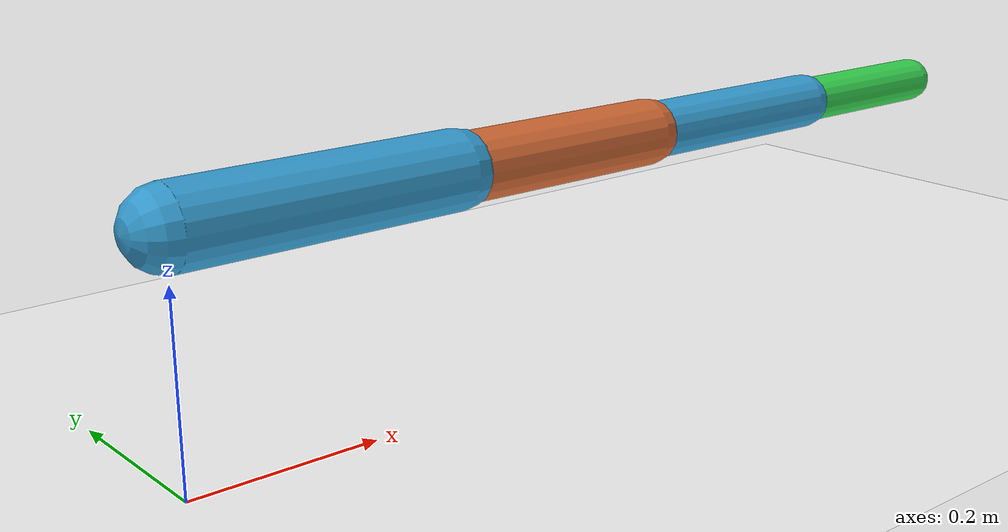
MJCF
<mujoco model="actuation_robot">
  <option gravity="0 0 -9.81" integrator="RK4" timestep="0.002"/>

  <default>
    <geom rgba="0.2 0.6 0.8 1" density="800"/>
    <joint type="hinge" axis="0 1 0" limited="true" damping="0.6"/>
  </default>

  <asset>
    <texture type="skybox" builtin="gradient" rgb1="1 1 1" rgb2="0.6 0.8 1" width="256" height="256"/>
  </asset>

  <worldbody>
    <light pos="0 0 2" dir="0 0 -1" diffuse="1 1 1"/>
    <geom name="ground" type="plane" size="2 2 0.1" rgba="0.95 0.95 0.95 1"/>

    <body name="base" pos="0 0 0.25">
      <joint name="shoulder" range="-90 90"/>
      <geom type="capsule" size="0.04" fromto="0 0 0  0.30 0 0"/>

      <body name="link1_flex" pos="0.30 0 0">
        <joint name="flex1" range="-5 5" damping="0.2" stiffness="10"/>
        <geom type="capsule" size="0.035" rgba="0.8 0.4 0.2 1" fromto="0 0 0  0.25 0 0"/>

        <body name="link2" pos="0.25 0 0">
          <joint name="elbow" range="-90 90"/>
          <geom type="capsule" size="0.03" fromto="0 0 0  0.25 0 0"/>

          <body name="link2_flex" pos="0.25 0 0">
            <joint name="flex2" range="-5 5" damping="0.2" stiffness="8"/>
            <geom type="capsule" size="0.025" rgba="0.2 0.8 0.3 1" fromto="0 0 0  0.20 0 0"/>
            <site name="tip" pos="0.20 0 0" size="0.01"/>
          </body>
        </body>
      </body>
    </body>
  </worldbody>

  <actuator>
    <motor name="shoulder_motor" joint="shoulder" gear="50" ctrllimited="true" ctrlrange="-1 1"/>
    <motor name="elbow_motor" joint="elbow" gear="50" ctrllimited="true" ctrlrange="-1 1"/>
  </actuator>
</mujoco>
